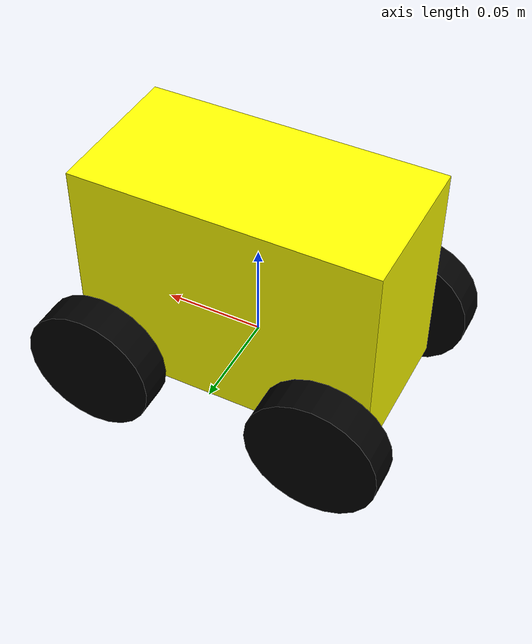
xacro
<?xml version="1.0"?>

<robot xmlns:xacro="http://www.ros.org/wiki/xacro" name="nanobot">

  <xacro:include filename="inertial_macros.xacro" />

  <!-- Body dimensions -->
  <xacro:property name="body_x_dim" value="0.152" />
  <xacro:property name="body_y_dim" value="0.0765" />
  <xacro:property name="body_z_dim" value="0.110" />
  <xacro:property name="body_z_offset" value="0.01425" />

  <!-- Wheel dimensions -->
  <xacro:property name="wheel_radius" value="0.033" /> <!-- 66mm diameter -->
  <xacro:property name="wheel_length" value="0.018" />
  <xacro:property name="wheel_x_offset" value="0.05875" />
  <xacro:property name="wheel_y_offset" value="0.00825" />

  <!-- Robot body and wheel mass -->
  <xacro:property name="body_mass" value="1.146" />
  <xacro:property name="wheel_mass" value="0.028" />

  <!-- Moments of intertia of the wheel -->
  <xacro:macro name="inertia_wheel">
    <xacro:inertial_cylinder mass="${wheel_mass}" length="${wheel_length}"
      radius="${wheel_radius}">
      <origin xyz="0 0 0" rpy="0 0 0" />
    </xacro:inertial_cylinder>
  </xacro:macro>

  <!-- Materials -->

  <material name="yellow">
    <color rgba="1 1 0 1" />
  </material>

  <material name="black">
    <color rgba="0 0 0 1" />
  </material>

  <material name="red">
    <color rgba="1 0 0 1" />
  </material>

  <!-- Links and joints definition -->

  <!-- TODO: Enable base footprint  -->
  <!-- Base footprint -->

  <!-- Base link -->

  <link name="base_link"></link>

  <!-- Body -->

  <joint name="body_joint" type="fixed">
    <parent link="base_link" />
    <child link="body_link" />
    <origin xyz="0 0 -${body_z_offset}"/>
  </joint>

  <link name="body_link">
    <visual>
      <origin xyz="0 0 ${body_z_dim/2}" rpy="0 0 0" />
      <geometry>
        <box size="${body_x_dim} ${body_y_dim} ${body_z_dim}" />
      </geometry>
      <material name="yellow" />
    </visual>
    <collision>
      <origin xyz="0 0 ${body_z_dim/2}" rpy="0 0 0" />
      <geometry>
        <box size="${body_x_dim} ${body_y_dim} ${body_z_dim}" />
      </geometry>
    </collision>
    <xacro:inertial_box mass="${body_mass}" x="${body_x_dim}" y="${body_y_dim}"
      z="${body_z_dim}">
      <origin xyz="0 0 ${body_z_dim/2}" rpy="0 0 0" />
    </xacro:inertial_box>
  </link>

  <gazebo reference="body_link">
    <material>Gazebo/Yellow</material>
  </gazebo>

  <!-- Front left wheel -->

  <joint name="front_left_wheel_joint" type="continuous">
    <parent link="base_link" />
    <child link="front_left_wheel_link" />
    <origin
      xyz="${wheel_x_offset} ${body_y_dim/2 + wheel_length/2 + wheel_y_offset} 0"
      rpy="-${pi/2} 0 0" />
    <axis xyz="0 0 1" />
    <limit effort="100" velocity="100" />
  </joint>

  <link name="front_left_wheel_link">
    <visual>
      <geometry>
        <cylinder length="${wheel_length}" radius="${wheel_radius}" />
      </geometry>
      <material name="black" />
    </visual>
    <collision>
      <geometry>
        <sphere radius="${wheel_radius}" />
      </geometry>
    </collision>
    <xacro:inertia_wheel />
  </link>

  <gazebo reference="front_left_wheel_link">
    <material>Gazebo/Black</material>
  </gazebo>

  <!-- Front right wheel -->

  <joint name="front_right_wheel_joint" type="continuous">
    <parent link="base_link" />
    <child link="front_right_wheel_link" />
    <origin
      xyz="${wheel_x_offset} -${body_y_dim/2 + wheel_length/2 + wheel_y_offset} 0"
      rpy="${pi/2} 0 0" />
    <axis xyz="0 0 -1" />
    <limit effort="100" velocity="100" />
  </joint>

  <link name="front_right_wheel_link">
    <visual>
      <geometry>
        <cylinder length="${wheel_length}" radius="${wheel_radius}" />
      </geometry>
      <material name="black" />
    </visual>
    <collision>
      <geometry>
        <sphere radius="${wheel_radius}" />
      </geometry>
    </collision>
    <xacro:inertia_wheel />
  </link>

  <gazebo reference="front_right_wheel_link">
    <material>Gazebo/Black</material>
  </gazebo>

  <!-- Rear left wheel -->

  <joint name="rear_left_wheel_joint" type="continuous">
    <parent link="base_link" />
    <child link="rear_left_wheel_link" />
    <origin
      xyz="-${wheel_x_offset} ${body_y_dim/2 + wheel_length/2 + wheel_y_offset} 0"
      rpy="-${pi/2} 0 0" />
    <axis xyz="0 0 1" />
    <limit effort="100" velocity="100" />
  </joint>

  <link name="rear_left_wheel_link">
    <visual>
      <geometry>
        <cylinder length="${wheel_length}" radius="${wheel_radius}" />
      </geometry>
      <material name="black" />
    </visual>
    <collision>
      <geometry>
        <sphere radius="${wheel_radius}" />
      </geometry>
    </collision>
    <xacro:inertia_wheel />
  </link>

  <gazebo reference="rear_left_wheel_link">
    <material>Gazebo/Black</material>
  </gazebo>

  <!-- Rear right wheel -->

  <joint name="rear_right_wheel_joint" type="continuous">
    <parent link="base_link" />
    <child link="rear_right_wheel_link" />
    <origin
      xyz="-${wheel_x_offset} -${body_y_dim/2 + wheel_length/2 + wheel_y_offset} 0"
      rpy="${pi/2} 0 0" />
    <axis xyz="0 0 -1" />
    <limit effort="100" velocity="100" />
  </joint>

  <link name="rear_right_wheel_link">
    <visual>
      <geometry>
        <cylinder length="${wheel_length}" radius="${wheel_radius}" />
      </geometry>
      <material name="black" />
    </visual>
    <collision>
      <geometry>
        <sphere radius="${wheel_radius}" />
      </geometry>
    </collision>
    <xacro:inertia_wheel />
  </link>

  <gazebo reference="rear_right_wheel_link">
    <material>Gazebo/Black</material>
  </gazebo>

</robot>

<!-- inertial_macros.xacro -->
<robot xmlns:xacro="http://www.ros.org/wiki/xacro">

  <!-- Specify some standard inertial calculations
  https://en.wikipedia.org/wiki/List_of_moments_of_inertia -->
  <!-- These make use of xacro's mathematical functionality -->

  <xacro:macro name="inertial_sphere" params="mass radius *origin">
    <inertial>
      <xacro:insert_block name="origin" />
      <mass value="${mass}" />
      <inertia ixx="${(2/5) * mass * (radius*radius)}" ixy="0.0" ixz="0.0"
        iyy="${(2/5) * mass * (radius*radius)}" iyz="0.0"
        izz="${(2/5) * mass * (radius*radius)}" />
    </inertial>
  </xacro:macro>

  <xacro:macro name="inertial_box" params="mass x y z *origin">
    <inertial>
      <xacro:insert_block name="origin" />
      <mass value="${mass}" />
      <inertia ixx="${(1/12) * mass * (y*y+z*z)}" ixy="0.0" ixz="0.0"
        iyy="${(1/12) * mass * (x*x+z*z)}" iyz="0.0"
        izz="${(1/12) * mass * (x*x+y*y)}" />
    </inertial>
  </xacro:macro>

  <xacro:macro name="inertial_cylinder" params="mass length radius *origin">
    <inertial>
      <xacro:insert_block name="origin" />
      <mass value="${mass}" />
      <inertia ixx="${(1/12) * mass * (3*radius*radius + length*length)}" ixy="0.0" ixz="0.0"
        iyy="${(1/12) * mass * (3*radius*radius + length*length)}" iyz="0.0"
        izz="${(1/2) * mass * (radius*radius)}" />
    </inertial>
  </xacro:macro>

</robot>
